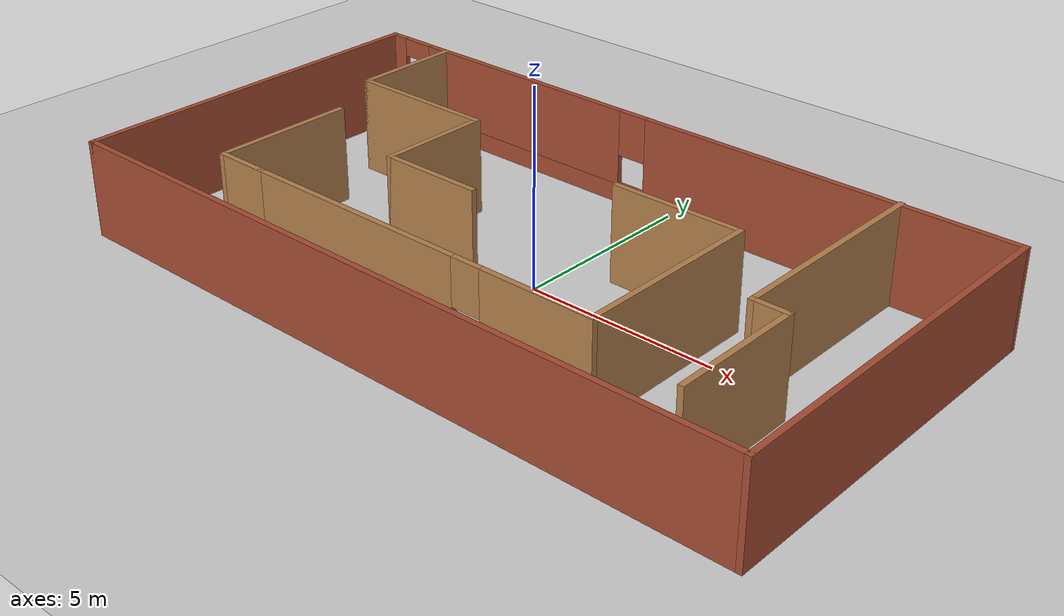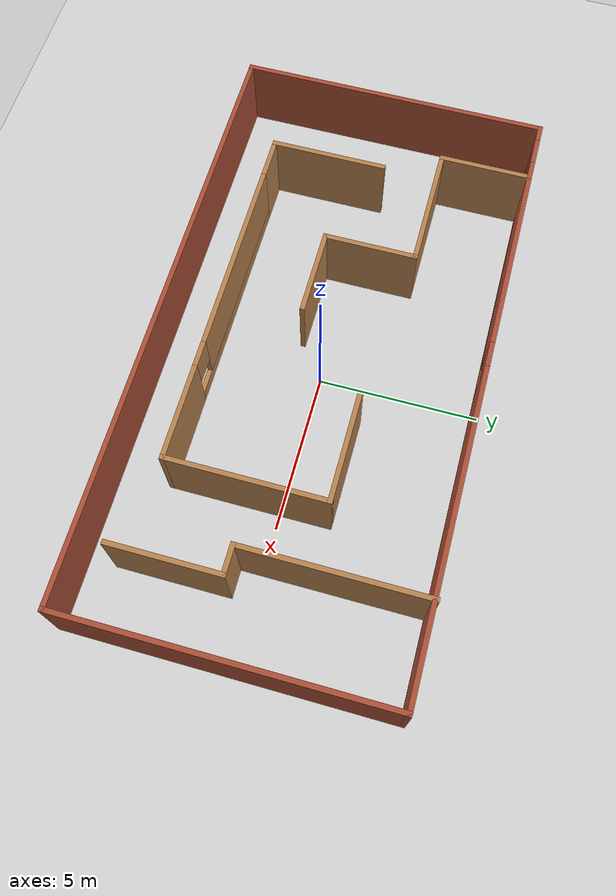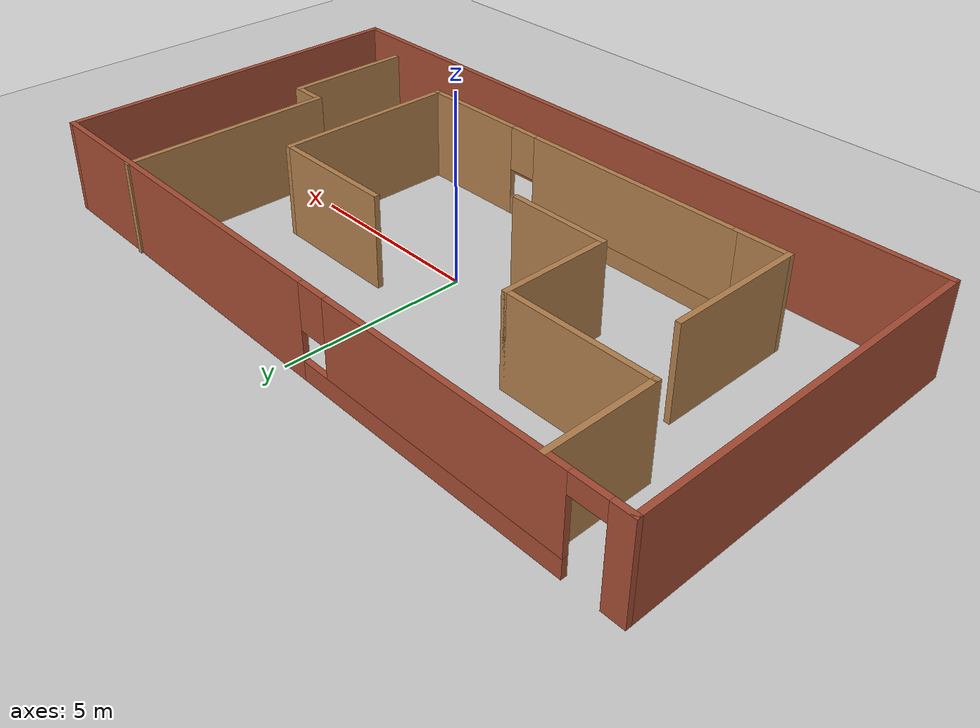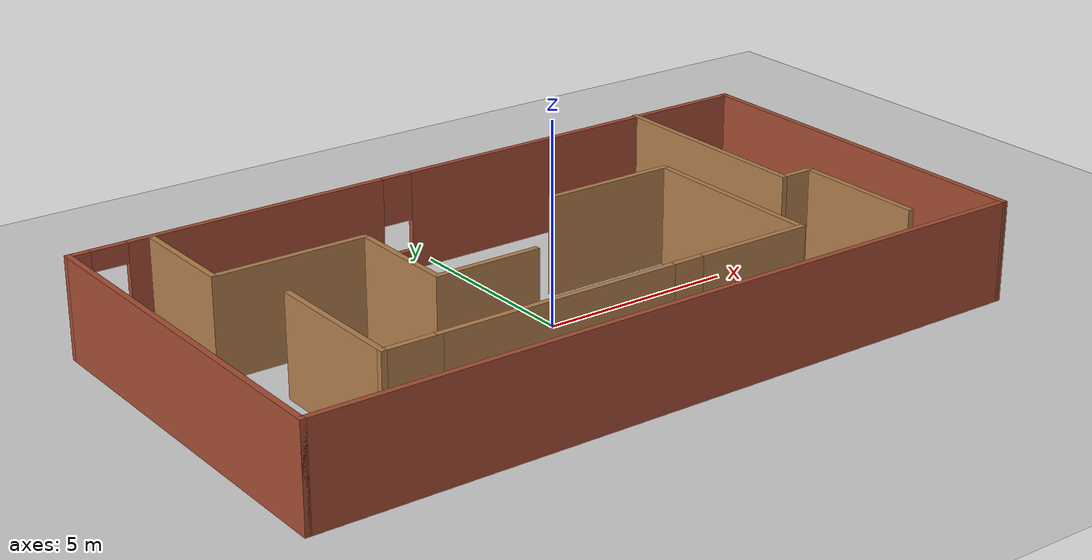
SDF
<sdf version="1.7">
 <world name="default">
  <light name="sun" type="directional">
   <pose>0 0 10 0 -0 0</pose>
   <diffuse>0.8 0.8 0.8 1</diffuse>
   <specular>0.2 0.2 0.2 1</specular>
   <attenuation>
    <range>1000</range>
    <constant>0.9</constant>
    <linear>0.01</linear>
    <quadratic>0.001</quadratic>
   </attenuation>
   <direction>-0.5 0.1 -0.9</direction>
   <spot><inner_angle>0</inner_angle><outer_angle>0</outer_angle><falloff>0</falloff></spot>
  </light>
  <model name="ground_plane">
   <static>1</static>
   <link name="link">
    <collision name="collision">
     <geometry><plane><normal>0 0 1</normal><size>100 100</size></plane></geometry>
     <surface>
      <contact><collide_bitmask>65535</collide_bitmask></contact>
      <friction><ode><mu>100</mu><mu2>50</mu2></ode></friction>
     </surface>
    </collision>
    <visual name="visual">
     <cast_shadows>0</cast_shadows>
     <geometry><plane><normal>0 0 1</normal><size>100 100</size></plane></geometry>
     <material>
      <script><uri>file://media/materials/scripts/gazebo.material</uri><name>Gazebo/Grey</name></script>
     </material>
    </visual>
   </link>
  </model>
  <gravity>0 0 -9.8</gravity>
  <magnetic_field>6e-06 2.3e-05 -4.2e-05</magnetic_field>
  <atmosphere type="adiabatic"/>
  <physics type="ode">
   <max_step_size>0.001</max_step_size>
   <real_time_factor>1</real_time_factor>
   <real_time_update_rate>1000</real_time_update_rate>
   <ode>
    <solver>
     <type>quick</type>
     <iters>150</iters>
     <precon_iters>0</precon_iters>
     <sor>1.4</sor>
     <use_dynamic_moi_rescaling>1</use_dynamic_moi_rescaling>
    </solver>
    <constraints>
     <cfm>0.00001</cfm>
     <erp>0.2</erp>
     <contact_max_correcting_vel>2000</contact_max_correcting_vel>
     <contact_surface_layer>0.01</contact_surface_layer>
    </constraints>
   </ode>
  </physics>
  <scene><ambient>0.4 0.4 0.4 1</ambient><background>0.7 0.7 0.7 1</background><shadows>1</shadows></scene>
  <spherical_coordinates>
   <surface_model>EARTH_WGS84</surface_model>
   <latitude_deg>0</latitude_deg>
   <longitude_deg>0</longitude_deg>
   <elevation>0</elevation>
   <heading_deg>0</heading_deg>
  </spherical_coordinates>
  <model name="map">
   <pose>-0.128689 -0.05676 0 0 -0 0</pose>
   <link name="Wall_0">
    <collision name="Wall_0_Collision">
     <geometry><box><size>10 0.15 2.5</size></box></geometry>
     <pose>0 0 1.25 0 -0 0</pose>
    </collision>
    <visual name="Wall_0_Visual">
     <pose>0 0 1.25 0 -0 0</pose>
     <geometry><box><size>10 0.15 2.5</size></box></geometry>
     <material>
      <script><uri>file://media/materials/scripts/gazebo.material</uri><name>Gazebo/Bricks</name></script>
      <ambient>1 1 1 1</ambient>
     </material>
     <meta><layer>0</layer></meta>
    </visual>
    <pose>-9.425 -0.02313 0 0 -0 -1.5708</pose>
   </link>
   <link name="Wall_10">
    <collision name="Wall_10_Collision">
     <geometry><box><size>3 0.15 2.5</size></box></geometry>
     <pose>0 0 1.25 0 -0 0</pose>
    </collision>
    <visual name="Wall_10_Visual">
     <pose>0 0 1.25 0 -0 0</pose>
     <geometry><box><size>3 0.15 2.5</size></box></geometry>
     <material>
      <script><uri>file://media/materials/scripts/gazebo.material</uri><name>Gazebo/Wood</name></script>
      <ambient>1 1 1 1</ambient>
     </material>
     <meta><layer>0</layer></meta>
    </visual>
    <pose>-7.43577 3.47687 0 0 -0 -1.5708</pose>
   </link>
   <link name="Wall_11">
    <collision name="Wall_11_Collision">
     <geometry><box><size>4 0.15 2.5</size></box></geometry>
     <pose>0 0 1.25 0 -0 0</pose>
    </collision>
    <visual name="Wall_11_Visual">
     <pose>0 0 1.25 0 -0 0</pose>
     <geometry><box><size>4 0.15 2.5</size></box></geometry>
     <material>
      <script><uri>file://media/materials/scripts/gazebo.material</uri><name>Gazebo/Wood</name></script>
      <ambient>1 1 1 1</ambient>
     </material>
     <meta><layer>0</layer></meta>
    </visual>
    <pose>-5.51077 2.05187 0 0 -0 0</pose>
   </link>
   <link name="Wall_12">
    <collision name="Wall_12_Collision">
     <geometry><box><size>3 0.15 2.5</size></box></geometry>
     <pose>0 0 1.25 0 -0 0</pose>
    </collision>
    <visual name="Wall_12_Visual">
     <pose>0 0 1.25 0 -0 0</pose>
     <geometry><box><size>3 0.15 2.5</size></box></geometry>
     <material>
      <script><uri>file://media/materials/scripts/gazebo.material</uri><name>Gazebo/Wood</name></script>
      <ambient>1 1 1 1</ambient>
     </material>
     <meta><layer>0</layer></meta>
    </visual>
    <pose>-3.58577 0.626869 0 0 -0 -1.5708</pose>
   </link>
   <link name="Wall_15">
    <collision name="Wall_15_Collision">
     <geometry><box><size>3.5 0.15 2.5</size></box></geometry>
     <pose>0 0 1.25 0 -0 0</pose>
    </collision>
    <visual name="Wall_15_Visual">
     <pose>0 0 1.25 0 -0 0</pose>
     <geometry><box><size>3.5 0.15 2.5</size></box></geometry>
     <material>
      <script><uri>file://media/materials/scripts/gazebo.material</uri><name>Gazebo/Wood</name></script>
      <ambient>1 1 1 1</ambient>
     </material>
     <meta><layer>0</layer></meta>
    </visual>
    <pose>2.93923 1.55187 0 0 -0 0</pose>
   </link>
   <link name="Wall_16">
    <collision name="Wall_16_Collision">
     <geometry><box><size>5 0.15 2.5</size></box></geometry>
     <pose>0 0 1.25 0 -0 0</pose>
    </collision>
    <visual name="Wall_16_Visual">
     <pose>0 0 1.25 0 -0 0</pose>
     <geometry><box><size>5 0.15 2.5</size></box></geometry>
     <material>
      <script><uri>file://media/materials/scripts/gazebo.material</uri><name>Gazebo/Wood</name></script>
      <ambient>1 1 1 1</ambient>
     </material>
     <meta><layer>0</layer></meta>
    </visual>
    <pose>4.61423 -0.87313 0 0 -0 -1.5708</pose>
   </link>
   <link name="Wall_17">
    <pose>-0.310768 -3.29813 0 0 -0 3.14159</pose>
    <visual name="Wall_17_Visual_0">
     <pose>-3.49762 0 1.25 0 -0 0</pose>
     <geometry><box><size>3.00476 0.15 2.5</size></box></geometry>
     <material>
      <script><uri>file://media/materials/scripts/gazebo.material</uri><name>Gazebo/Wood</name></script>
      <ambient>1 1 1 1</ambient>
     </material>
     <meta><layer>0</layer></meta>
    </visual>
    <collision name="Wall_17_Collision_0">
     <geometry><box><size>3.00476 0.15 2.5</size></box></geometry>
     <pose>-3.49762 0 1.25 0 -0 0</pose>
    </collision>
    <visual name="Wall_17_Visual_1">
     <pose>1.50238 0 0.25 0 -0 0</pose>
     <geometry><box><size>6.99524 0.15 0.5</size></box></geometry>
     <material>
      <script><uri>file://media/materials/scripts/gazebo.material</uri><name>Gazebo/Wood</name></script>
      <ambient>1 1 1 1</ambient>
     </material>
     <meta><layer>0</layer></meta>
    </visual>
    <collision name="Wall_17_Collision_1">
     <geometry><box><size>6.99524 0.15 0.5</size></box></geometry>
     <pose>1.50238 0 0.25 0 -0 0</pose>
    </collision>
    <visual name="Wall_17_Visual_2">
     <pose>1.90238 0 1.5 0 -0 0</pose>
     <geometry><box><size>6.19524 0.15 2</size></box></geometry>
     <material>
      <script><uri>file://media/materials/scripts/gazebo.material</uri><name>Gazebo/Wood</name></script>
      <ambient>1 1 1 1</ambient>
     </material>
     <meta><layer>0</layer></meta>
    </visual>
    <collision name="Wall_17_Collision_2">
     <geometry><box><size>6.19524 0.15 2</size></box></geometry>
     <pose>1.90238 0 1.5 0 -0 0</pose>
    </collision>
    <visual name="Wall_17_Visual_3">
     <pose>-1.59524 0 1.9 0 -0 0</pose>
     <geometry><box><size>0.8 0.15 1.2</size></box></geometry>
     <material>
      <script><uri>file://media/materials/scripts/gazebo.material</uri><name>Gazebo/Wood</name></script>
      <ambient>1 1 1 1</ambient>
     </material>
     <meta><layer>0</layer></meta>
    </visual>
    <collision name="Wall_17_Collision_3">
     <geometry><box><size>0.8 0.15 1.2</size></box></geometry>
     <pose>-1.59524 0 1.9 0 -0 0</pose>
    </collision>
   </link>
   <link name="Wall_18">
    <collision name="Wall_18_Collision">
     <geometry><box><size>1.5 0.15 2.5</size></box></geometry>
     <pose>0 0 1.25 0 -0 0</pose>
    </collision>
    <visual name="Wall_18_Visual">
     <pose>0 0 1.25 0 -0 0</pose>
     <geometry><box><size>1.5 0.15 2.5</size></box></geometry>
     <material>
      <script><uri>file://media/materials/scripts/gazebo.material</uri><name>Gazebo/Wood</name></script>
      <ambient>1 1 1 1</ambient>
     </material>
     <meta><layer>0</layer></meta>
    </visual>
    <pose>-5.91077 -3.29813 0 0 -0 3.14159</pose>
   </link>
   <link name="Wall_19">
    <collision name="Wall_19_Collision">
     <geometry><box><size>3.75 0.15 2.5</size></box></geometry>
     <pose>0 0 1.25 0 -0 0</pose>
    </collision>
    <visual name="Wall_19_Visual">
     <pose>0 0 1.25 0 -0 0</pose>
     <geometry><box><size>3.75 0.15 2.5</size></box></geometry>
     <material>
      <script><uri>file://media/materials/scripts/gazebo.material</uri><name>Gazebo/Wood</name></script>
      <ambient>1 1 1 1</ambient>
     </material>
     <meta><layer>0</layer></meta>
    </visual>
    <pose>-6.58577 -1.49813 0 0 -0 1.5708</pose>
   </link>
   <link name="Wall_2">
    <collision name="Wall_2_Collision">
     <geometry><box><size>19 0.15 2.5</size></box></geometry>
     <pose>0 0 1.25 0 -0 0</pose>
    </collision>
    <visual name="Wall_2_Visual">
     <pose>0 0 1.25 0 -0 0</pose>
     <geometry><box><size>19 0.15 2.5</size></box></geometry>
     <material>
      <script><uri>file://media/materials/scripts/gazebo.material</uri><name>Gazebo/Bricks</name></script>
      <ambient>1 1 1 1</ambient>
     </material>
     <meta><layer>0</layer></meta>
    </visual>
    <pose>0 -4.94813 0 0 -0 0</pose>
   </link>
   <link name="Wall_21">
    <collision name="Wall_21_Collision">
     <geometry><box><size>5.75 0.15 2.5</size></box></geometry>
     <pose>0 0 1.25 0 -0 0</pose>
    </collision>
    <visual name="Wall_21_Visual">
     <pose>0 0 1.25 0 -0 0</pose>
     <geometry><box><size>5.75 0.15 2.5</size></box></geometry>
     <material>
      <script><uri>file://media/materials/scripts/gazebo.material</uri><name>Gazebo/Wood</name></script>
      <ambient>1 1 1 1</ambient>
     </material>
     <meta><layer>0</layer></meta>
    </visual>
    <pose>6.46573 2.14813 0 0 -0 -1.5708</pose>
   </link>
   <link name="Wall_22">
    <collision name="Wall_22_Collision">
     <geometry><box><size>1 0.15 2.5</size></box></geometry>
     <pose>0 0 1.25 0 -0 0</pose>
    </collision>
    <visual name="Wall_22_Visual">
     <pose>0 0 1.25 0 -0 0</pose>
     <geometry><box><size>1 0.15 2.5</size></box></geometry>
     <material>
      <script><uri>file://media/materials/scripts/gazebo.material</uri><name>Gazebo/Wood</name></script>
      <ambient>1 1 1 1</ambient>
     </material>
     <meta><layer>0</layer></meta>
    </visual>
    <pose>6.89073 -0.651869 0 0 -0 0</pose>
   </link>
   <link name="Wall_23">
    <collision name="Wall_23_Collision">
     <geometry><box><size>3.5 0.15 2.5</size></box></geometry>
     <pose>0 0 1.25 0 -0 0</pose>
    </collision>
    <visual name="Wall_23_Visual">
     <pose>0 0 1.25 0 -0 0</pose>
     <geometry><box><size>3.5 0.15 2.5</size></box></geometry>
     <material>
      <script><uri>file://media/materials/scripts/gazebo.material</uri><name>Gazebo/Wood</name></script>
      <ambient>1 1 1 1</ambient>
     </material>
     <meta><layer>0</layer></meta>
    </visual>
    <pose>7.31573 -2.32687 0 0 -0 -1.5708</pose>
   </link>
   <link name="Wall_25">
    <collision name="Wall_25_Collision">
     <geometry><box><size>2.75 0.15 2.5</size></box></geometry>
     <pose>0 0 1.25 0 -0 0</pose>
    </collision>
    <visual name="Wall_25_Visual">
     <pose>0 0 1.25 0 -0 0</pose>
     <geometry><box><size>2.75 0.15 2.5</size></box></geometry>
     <material>
      <script><uri>file://media/materials/scripts/gazebo.material</uri><name>Gazebo/Wood</name></script>
      <ambient>1 1 1 1</ambient>
     </material>
     <meta><layer>0</layer></meta>
    </visual>
    <pose>-2.28577 -0.798131 0 0 -0 0</pose>
   </link>
   <link name="Wall_4">
    <collision name="Wall_4_Collision">
     <geometry><box><size>10 0.15 2.5</size></box></geometry>
     <pose>0 0 1.25 0 -0 0</pose>
    </collision>
    <visual name="Wall_4_Visual">
     <pose>0 0 1.25 0 -0 0</pose>
     <geometry><box><size>10 0.15 2.5</size></box></geometry>
     <material>
      <script><uri>file://media/materials/scripts/gazebo.material</uri><name>Gazebo/Bricks</name></script>
      <ambient>1 1 1 1</ambient>
     </material>
     <meta><layer>0</layer></meta>
    </visual>
    <pose>9.425 -0.02313 0 0 -0 1.5708</pose>
   </link>
   <link name="Wall_5">
    <pose>0 4.90187 0 0 -0 3.14159</pose>
    <visual name="Wall_5_Visual_0">
     <pose>-4.48197 0 1.25 0 -0 0</pose>
     <geometry><box><size>10.0361 0.15 2.5</size></box></geometry>
     <material>
      <script><uri>file://media/materials/scripts/gazebo.material</uri><name>Gazebo/Bricks</name></script>
      <ambient>1 1 1 1</ambient>
     </material>
     <meta><layer>0</layer></meta>
    </visual>
    <collision name="Wall_5_Collision_0">
     <geometry><box><size>10.0361 0.15 2.5</size></box></geometry>
     <pose>-4.48197 0 1.25 0 -0 0</pose>
    </collision>
    <visual name="Wall_5_Visual_1">
     <pose>9.21332 0 1.25 0 -0 0</pose>
     <geometry><box><size>0.573355 0.15 2.5</size></box></geometry>
     <material>
      <script><uri>file://media/materials/scripts/gazebo.material</uri><name>Gazebo/Bricks</name></script>
      <ambient>1 1 1 1</ambient>
     </material>
     <meta><layer>0</layer></meta>
    </visual>
    <collision name="Wall_5_Collision_1">
     <geometry><box><size>0.573355 0.15 2.5</size></box></geometry>
     <pose>9.21332 0 1.25 0 -0 0</pose>
    </collision>
    <visual name="Wall_5_Visual_2">
     <pose>4.28136 0 0.25 0 -0 0</pose>
     <geometry><box><size>7.49058 0.15 0.5</size></box></geometry>
     <material>
      <script><uri>file://media/materials/scripts/gazebo.material</uri><name>Gazebo/Bricks</name></script>
      <ambient>1 1 1 1</ambient>
     </material>
     <meta><layer>0</layer></meta>
    </visual>
    <collision name="Wall_5_Collision_2">
     <geometry><box><size>7.49058 0.15 0.5</size></box></geometry>
     <pose>4.28136 0 0.25 0 -0 0</pose>
    </collision>
    <visual name="Wall_5_Visual_3">
     <pose>4.68136 0 1.5 0 -0 0</pose>
     <geometry><box><size>6.69058 0.15 2</size></box></geometry>
     <material>
      <script><uri>file://media/materials/scripts/gazebo.material</uri><name>Gazebo/Bricks</name></script>
      <ambient>1 1 1 1</ambient>
     </material>
     <meta><layer>0</layer></meta>
    </visual>
    <collision name="Wall_5_Collision_3">
     <geometry><box><size>6.69058 0.15 2</size></box></geometry>
     <pose>4.68136 0 1.5 0 -0 0</pose>
    </collision>
    <visual name="Wall_5_Visual_4">
     <pose>0.936067 0 1.9 0 -0 0</pose>
     <geometry><box><size>0.8 0.15 1.2</size></box></geometry>
     <material>
      <script><uri>file://media/materials/scripts/gazebo.material</uri><name>Gazebo/Bricks</name></script>
      <ambient>1 1 1 1</ambient>
     </material>
     <meta><layer>0</layer></meta>
    </visual>
    <collision name="Wall_5_Collision_4">
     <geometry><box><size>0.8 0.15 1.2</size></box></geometry>
     <pose>0.936067 0 1.9 0 -0 0</pose>
    </collision>
    <visual name="Wall_5_Visual_5">
     <pose>8.47664 0 2.25 0 -0 0</pose>
     <geometry><box><size>0.9 0.15 0.5</size></box></geometry>
     <material>
      <script><uri>file://media/materials/scripts/gazebo.material</uri><name>Gazebo/Bricks</name></script>
      <ambient>1 1 1 1</ambient>
     </material>
     <meta><layer>0</layer></meta>
    </visual>
    <collision name="Wall_5_Collision_5">
     <geometry><box><size>0.9 0.15 0.5</size></box></geometry>
     <pose>8.47664 0 2.25 0 -0 0</pose>
    </collision>
   </link>
   <static>1</static>
  </model>
 </world>
</sdf>
